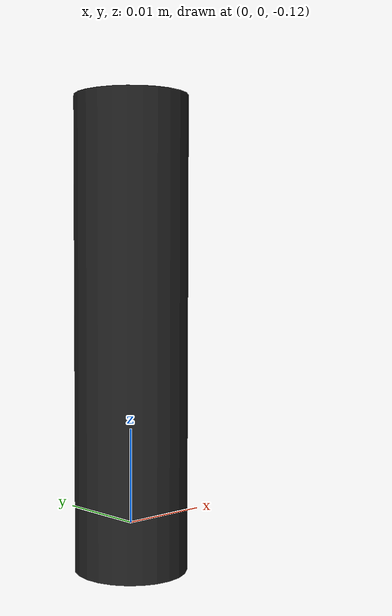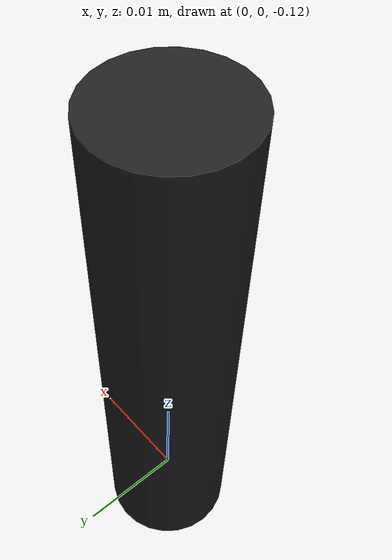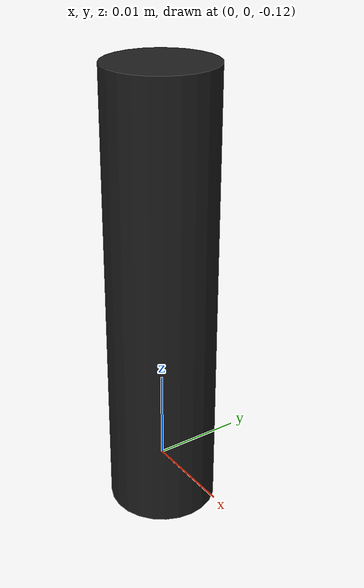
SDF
<?xml version="1.0" ?>
<sdf version="1.4">
  <model name="lidar">
    <link name="link">
      <pose>0 0 -0.1 0 0 0</pose>
      <inertial>
        <pose>0 0 0 0 0 0</pose>
        <mass>0.01</mass>
        <inertia>
          <ixx>2.1733e-6</ixx>
          <ixy>0</ixy>
          <ixz>0</ixz>
          <iyy>2.1733e-6</iyy>
          <iyz>0</iyz>
          <izz>1.8e-7</izz>
        </inertia>
      </inertial>
      <visual name="visual">
        <geometry>
          <cylinder><radius>0.006</radius><length>0.05</length></cylinder>
        </geometry>
        <material>
          <script>
            <name>Gazebo/Black</name>
          </script>
        </material>
      </visual>
      <sensor name="laser" type="ray">
        <pose>0 0 0 0 0 0</pose>
        <ray>
          <scan>
            <horizontal>
              <samples>360</samples>
              <resolution>1.00000</resolution>
              <min_angle>0.000000</min_angle>
              <max_angle>6.280000</max_angle>
            </horizontal>
          </scan>
          <range>
            <min>0.06</min> <!-- do not change: use min_distance (below) for realistic behavior (smaller values cause issues) -->
            <max>1</max>   <!-- do not change: use min_distance (below) for realistic behavior (bigger values cause issues) -->
            <resolution>0.01</resolution>
          </range>
          <noise>
            <type>gaussian</type>
            <mean>0.0</mean>
            <stddev>0.02</stddev>
          </noise>
        </ray>
        <plugin name="LaserPlugin" filename="libgazebo_ros_ray_sensor.so">
          <robotNamespace></robotNamespace>
          <output_type>sensor_msgs/LaserScan</output_type>
          <topicName>lidar/scan</topicName>
          <frameName>lidar_link</frameName>
          <min_distance>0.2</min_distance>
          <max_distance>1.0</max_distance>
        </plugin>
        <always_on>1</always_on>
        <update_rate>20</update_rate>
        <visualize>true</visualize>
      </sensor>
    </link>
  </model>
</sdf>
